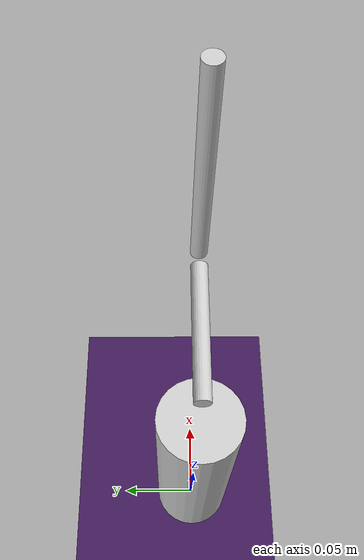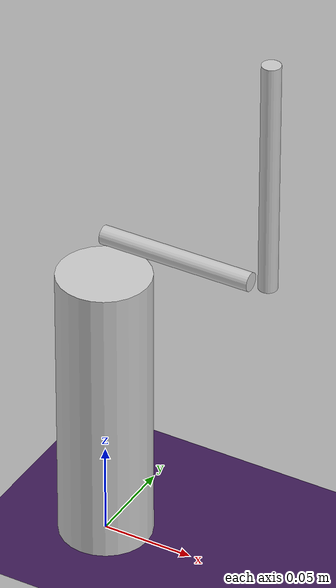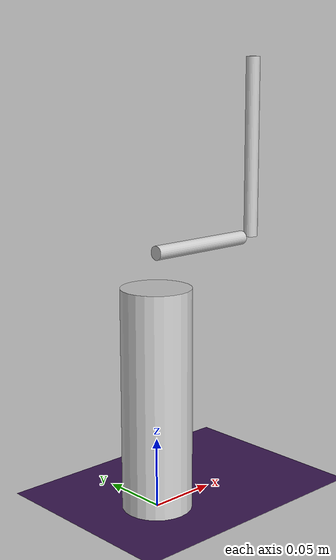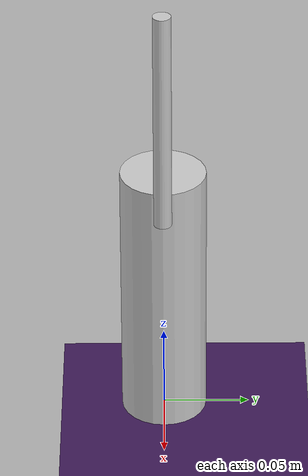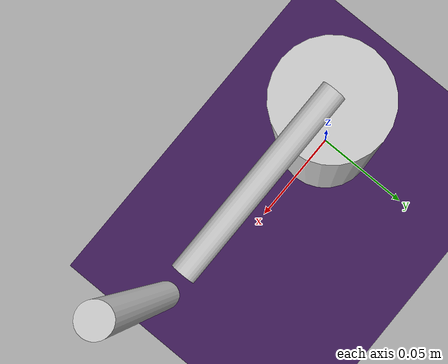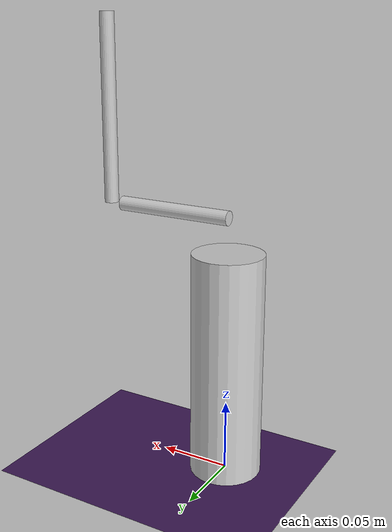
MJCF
<mujoco model="rotary_pendulum">
  <!-- World settings -->
  <compiler angle="radian" />
  <size njmax="500" nconmax="100" />
  <option timestep="0.001" />

  <asset>
    <texture name="texplane" type="2d" builtin="checker" rgb1="0.26 0.12 0.36"
      rgb2="0.23 0.09 0.33" width="512" height="512" mark="cross" markrgb=".8 .8 .8" />
    <texture name="texgeom" type="cube" builtin="flat" mark="cross" width="127" height="1278"
      rgb1="0.8 0.6 0.4" rgb2="0.8 0.6 0.4" markrgb="1 1 1" random="0.01" />
    <material name="matplane" reflectance="0.3" texture="texplane" texrepeat="1 1"
      texuniform="true" />
    <material name="matgeom" texture="texgeom" texuniform="true" rgba="0.8 0.6 .4 1" />
  </asset>
  <visual>
    <headlight ambient="0.6 0.6 0.6" diffuse="0.5 0.5 0.5" specular="0.2 0.2 0.2" />
    <map znear="0.001" />
  </visual>

  <worldbody>
    <!-- Floor -->
    <geom contype="1" friction=".5 0.005 0.0001" name="floor" pos="0 0 0.0" size="0 0 .25"
      type="plane" material="matplane" condim="3" />

    <!-- Pendulum -->
    <geom size="0.025 0.08" pos="0 0 0.08" type="cylinder" rgba="0.8 0.8 0.8 1" />
    <body name="arm1" pos="0 0 0.184">
      <inertial pos="0.05415 0 0" quat="0.5 0.5 0.5 0.5" mass="0.040466"
        diaginertia="2.40543e-05 2.40543e-05 1e-06" />
      <joint name="joint0" pos="0 0 0" axis="0 0 1" damping="0.008" />
      <geom name="arm1_geom" size="0.005 0.042" pos="0.042 0 0" quat="0.707107 0 0.707107 0" type="cylinder"
        rgba="0.8 0.8 0.8 1" />
      <body name="arm2" pos="0.093525 0 0" quat="1 0 0 0">
        <inertial pos="0 0 0.096608" mass="0.009801" diaginertia="1.47906e-05 1.47906e-05 1e-06" />
        <joint name="joint1" pos="0 0 0" axis="1 0 0" damping="1.79057e-05" />
        <geom name="arm2_geom" size="0.005 0.0645" pos="0 0 0.0645" type="cylinder" rgba="0.8 0.8 0.8 1" />
      </body>
    </body>
  </worldbody>

  <actuator>
    <motor ctrllimited="true" ctrlrange="-0.4 0.4" gear="1.0" joint="joint0" />
  </actuator>
</mujoco>
